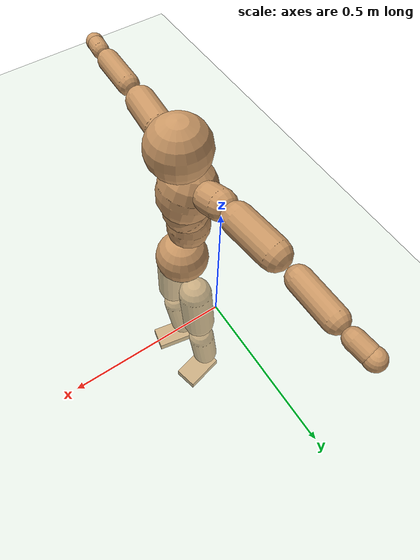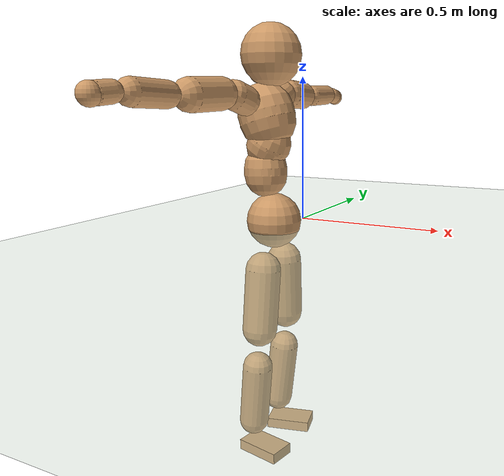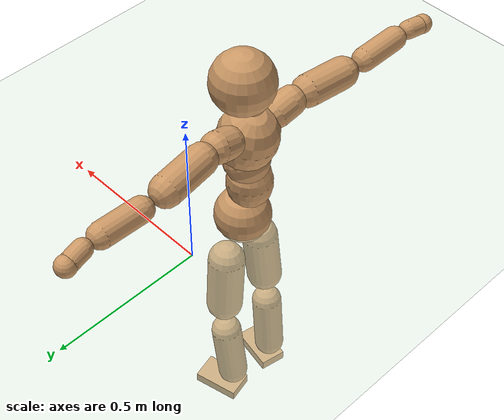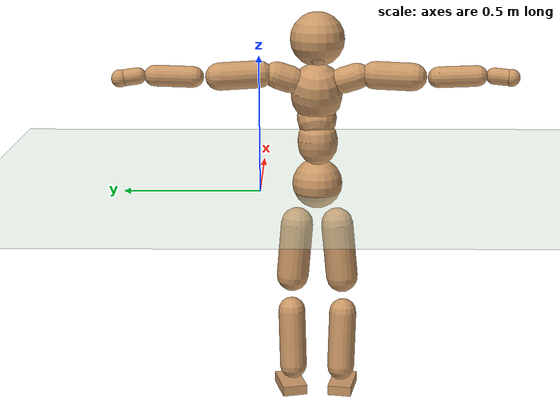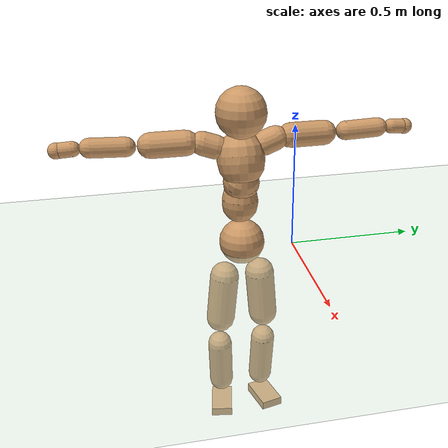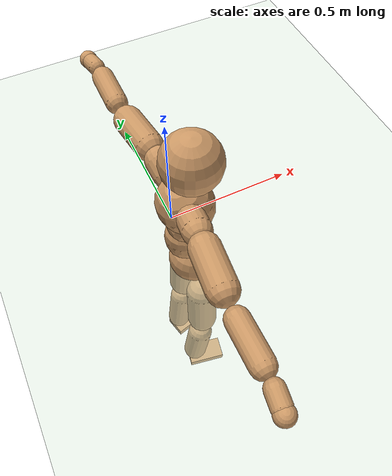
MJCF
<mujoco model="humanoid">
  <compiler coordinate="local"/>
  <default>
    <joint damping="0.0" armature="0.01" stiffness="0.0" limited="true"/>
    <geom conaffinity="1" condim="3" contype="7" margin="0.001" rgba="0.8 0.6 .4 1"/>
  </default>
  <asset>
    <texture type="skybox" builtin="gradient" rgb1=".4 .5 .6" rgb2="0 0 0" width="100" height="100"/>
    <texture builtin="flat" height="1278" mark="cross" markrgb="1 1 1" name="texgeom" random="0.01" rgb1="0.8 0.6 0.4" rgb2="0.8 0.6 0.4" type="cube" width="127"/>
    <texture builtin="checker" height="100" name="texplane" rgb1="0 0 0" rgb2="0.8 0.8 0.8" type="2d" width="100"/>
    <material name="MatPlane" reflectance="0.5" shininess="1" specular="1" texrepeat="60 60" texture="texplane"/>
    <material name="geom" texture="texgeom" texuniform="true"/>
  </asset>
  <worldbody>
    <light cutoff="100" diffuse="1 1 1" dir="-0 0 -1.3" directional="true" exponent="1" pos="0 0 1.3" specular=".1 .1 .1"/>
    <geom conaffinity="1" condim="3" name="floor" pos="0 0 0" rgba="0.8 0.9 0.8 1" size="100 100 .2" type="plane" material="MatPlane"/>
    <body name="Pelvis" pos="-0.0029 -0.2093 0.0315">
      <freejoint name="Pelvis"/>
      <geom type="sphere" contype="1" conaffinity="1" density="500" size="0.0912" pos="0.0000 0.0000 0.0000" name="Pelvis"/>
      <body name="L_Hip" pos="-0.0023 0.069 -0.0857">
        <joint name="L_Hip_x" type="hinge" pos="0 0 0" axis="1 0 0" stiffness="800" damping="80" armature="0.02" range="-180.0000 180.0000"/>
        <joint name="L_Hip_y" type="hinge" pos="0 0 0" axis="0 1 0" stiffness="800" damping="80" armature="0.02" range="-180.0000 180.0000"/>
        <joint name="L_Hip_z" type="hinge" pos="0 0 0" axis="0 0 1" stiffness="800" damping="80" armature="0.02" range="-180.0000 180.0000"/>
        <geom type="capsule" contype="1" conaffinity="1" density="500" fromto="-0.0015 0.0055 -0.0669 -0.0060 0.0218 -0.2674" size="0.0592" name="L_Hip"/>
        <body name="L_Knee" pos="-0.0075 0.0273 -0.3343">
          <joint name="L_Knee_x" type="hinge" pos="0 0 0" axis="1 0 0" stiffness="800" damping="80" armature="0.02" range="-180.0000 180.0000"/>
          <joint name="L_Knee_y" type="hinge" pos="0 0 0" axis="0 1 0" stiffness="800" damping="80" armature="0.02" range="-180.0000 180.0000"/>
          <joint name="L_Knee_z" type="hinge" pos="0 0 0" axis="0 0 1" stiffness="800" damping="80" armature="0.02" range="-180.0000 180.0000"/>
          <geom type="capsule" contype="1" conaffinity="1" density="500" fromto="-0.0079 -0.0020 -0.0700 -0.0317 -0.0078 -0.2800" size="0.0503" name="L_Knee"/>
          <body name="L_Ankle" pos="-0.0397 -0.0098 -0.3499">
            <joint name="L_Ankle_x" type="hinge" pos="0 0 0" axis="1 0 0" stiffness="800" damping="80" armature="0.02" range="-180.0000 180.0000"/>
            <joint name="L_Ankle_y" type="hinge" pos="0 0 0" axis="0 1 0" stiffness="800" damping="80" armature="0.02" range="-180.0000 180.0000"/>
            <joint name="L_Ankle_z" type="hinge" pos="0 0 0" axis="0 0 1" stiffness="800" damping="80" armature="0.02" range="-180.0000 180.0000"/>
            <geom type="box" contype="1" conaffinity="1" density="500" pos="0.0535 0.0129 -0.0256" size="0.0773 0.0458 0.0182" quat="0.9930 0.0000 0.0000 0.1181" name="L_Ankle"/>
            <body name="L_Toe" pos="0.1069 0.0258 -0.0512">
              <joint name="L_Toe_x" type="hinge" pos="0 0 0" axis="1 0 0" stiffness="500" damping="50" armature="0.02" range="-180.0000 180.0000"/>
              <joint name="L_Toe_y" type="hinge" pos="0 0 0" axis="0 1 0" stiffness="500" damping="50" armature="0.02" range="-180.0000 180.0000"/>
              <joint name="L_Toe_z" type="hinge" pos="0 0 0" axis="0 0 1" stiffness="500" damping="50" armature="0.02" range="-180.0000 180.0000"/>
              <geom type="box" contype="1" conaffinity="1" density="500" pos="0.0000 0.0000 0.0262" size="0.0009 0.0023 0.0009" quat="0.9922 0.0000 0.0000 0.1246" name="L_Toe"/>
            </body>
          </body>
        </body>
      </body>
      <body name="R_Hip" pos="0 -0.0673 -0.0857">
        <joint name="R_Hip_x" type="hinge" pos="0 0 0" axis="1 0 0" stiffness="800" damping="80" armature="0.02" range="-180.0000 180.0000"/>
        <joint name="R_Hip_y" type="hinge" pos="0 0 0" axis="0 1 0" stiffness="800" damping="80" armature="0.02" range="-180.0000 180.0000"/>
        <joint name="R_Hip_z" type="hinge" pos="0 0 0" axis="0 0 1" stiffness="800" damping="80" armature="0.02" range="-180.0000 180.0000"/>
        <geom type="capsule" contype="1" conaffinity="1" density="500" fromto="-0.0019 -0.0064 -0.0681 -0.0076 -0.0257 -0.2723" size="0.0586" name="R_Hip"/>
        <body name="R_Knee" pos="-0.0095 -0.0321 -0.3404">
          <joint name="R_Knee_x" type="hinge" pos="0 0 0" axis="1 0 0" stiffness="800" damping="80" armature="0.02" range="-180.0000 180.0000"/>
          <joint name="R_Knee_y" type="hinge" pos="0 0 0" axis="0 1 0" stiffness="800" damping="80" armature="0.02" range="-180.0000 180.0000"/>
          <joint name="R_Knee_z" type="hinge" pos="0 0 0" axis="0 0 1" stiffness="800" damping="80" armature="0.02" range="-180.0000 180.0000"/>
          <geom type="capsule" contype="1" conaffinity="1" density="500" fromto="-0.0077 0.0023 -0.0700 -0.0309 0.0091 -0.2801" size="0.0505" name="R_Knee"/>
          <body name="R_Ankle" pos="-0.0386 0.0114 -0.3502">
            <joint name="R_Ankle_x" type="hinge" pos="0 0 0" axis="1 0 0" stiffness="800" damping="80" armature="0.02" range="-180.0000 180.0000"/>
            <joint name="R_Ankle_y" type="hinge" pos="0 0 0" axis="0 1 0" stiffness="800" damping="80" armature="0.02" range="-180.0000 180.0000"/>
            <joint name="R_Ankle_z" type="hinge" pos="0 0 0" axis="0 0 1" stiffness="800" damping="80" armature="0.02" range="-180.0000 180.0000"/>
            <geom type="box" contype="1" conaffinity="1" density="500" pos="0.0550 -0.0104 -0.0214" size="0.0778 0.0441 0.0183" quat="0.9956 0.0000 0.0000 -0.0935" name="R_Ankle"/>
            <body name="R_Toe" pos="0.11 -0.0209 -0.0428">
              <joint name="R_Toe_x" type="hinge" pos="0 0 0" axis="1 0 0" stiffness="500" damping="50" armature="0.02" range="-180.0000 180.0000"/>
              <joint name="R_Toe_y" type="hinge" pos="0 0 0" axis="0 1 0" stiffness="500" damping="50" armature="0.02" range="-180.0000 180.0000"/>
              <joint name="R_Toe_z" type="hinge" pos="0 0 0" axis="0 0 1" stiffness="500" damping="50" armature="0.02" range="-180.0000 180.0000"/>
              <geom type="box" contype="1" conaffinity="1" density="500" pos="0.0000 0.0000 0.0235" size="0.0009 0.0022 0.001" quat="0.9965 0.0000 0.0000 -0.0833" name="R_Toe"/>
            </body>
          </body>
        </body>
      </body>
      <body name="Torso" pos="-0.0266 -0.0028 0.0999">
        <joint name="Torso_x" type="hinge" pos="0 0 0" axis="1 0 0" stiffness="1000" damping="100" armature="0.02" range="-180.0000 180.0000"/>
        <joint name="Torso_y" type="hinge" pos="0 0 0" axis="0 1 0" stiffness="1000" damping="100" armature="0.02" range="-180.0000 180.0000"/>
        <joint name="Torso_z" type="hinge" pos="0 0 0" axis="0 0 1" stiffness="1000" damping="100" armature="0.02" range="-180.0000 180.0000"/>
        <geom type="capsule" contype="1" conaffinity="1" density="500" fromto="-0.0027 0.0027 0.0746 -0.0018 0.0018 0.0498" size="0.0715" name="Torso"/>
        <body name="Spine" pos="-0.0045 0.0045 0.1244">
          <joint name="Spine_x" type="hinge" pos="0 0 0" axis="1 0 0" stiffness="1000" damping="100" armature="0.02" range="-180.0000 180.0000"/>
          <joint name="Spine_y" type="hinge" pos="0 0 0" axis="0 1 0" stiffness="1000" damping="100" armature="0.02" range="-180.0000 180.0000"/>
          <joint name="Spine_z" type="hinge" pos="0 0 0" axis="0 0 1" stiffness="1000" damping="100" armature="0.02" range="-180.0000 180.0000"/>
          <geom type="capsule" contype="1" conaffinity="1" density="500" fromto="0.0165 0.0013 0.0287 0.0110 0.0009 0.0191" size="0.0714" name="Spine"/>
          <body name="Chest" pos="0.0274 0.0022 0.0478">
            <joint name="Chest_x" type="hinge" pos="0 0 0" axis="1 0 0" stiffness="1000" damping="100" armature="0.02" range="-180.0000 180.0000"/>
            <joint name="Chest_y" type="hinge" pos="0 0 0" axis="0 1 0" stiffness="1000" damping="100" armature="0.02" range="-180.0000 180.0000"/>
            <joint name="Chest_z" type="hinge" pos="0 0 0" axis="0 0 1" stiffness="1000" damping="100" armature="0.02" range="-180.0000 180.0000"/>
            <geom type="capsule" contype="1" conaffinity="1" density="500" fromto="-0.0240 -0.0011 0.0838 -0.0160 -0.0007 0.0559" size="0.0926" name="Chest"/>
            <body name="Neck" pos="-0.046 -0.0036 0.1961">
              <joint name="Neck_x" type="hinge" pos="0 0 0" axis="1 0 0" stiffness="500" damping="50" armature="0.02" range="-180.0000 180.0000"/>
              <joint name="Neck_y" type="hinge" pos="0 0 0" axis="0 1 0" stiffness="500" damping="50" armature="0.02" range="-180.0000 180.0000"/>
              <joint name="Neck_z" type="hinge" pos="0 0 0" axis="0 0 1" stiffness="500" damping="50" armature="0.02" range="-180.0000 180.0000"/>
              <geom type="capsule" contype="1" conaffinity="1" density="500" fromto="0.0095 0.0002 0.0121 0.0380 0.0007 0.0485" size="0.0405" name="Neck"/>
              <body name="Head" pos="0.0475 0.0008 0.0606">
                <joint name="Head_x" type="hinge" pos="0 0 0" axis="1 0 0" stiffness="500" damping="50" armature="0.02" range="-180.0000 180.0000"/>
                <joint name="Head_y" type="hinge" pos="0 0 0" axis="0 1 0" stiffness="500" damping="50" armature="0.02" range="-180.0000 180.0000"/>
                <joint name="Head_z" type="hinge" pos="0 0 0" axis="0 0 1" stiffness="500" damping="50" armature="0.02" range="-180.0000 180.0000"/>
                <geom type="sphere" contype="1" conaffinity="1" density="500" size="0.0977" pos="0.0000 0.0000 0.0000" name="Head"/>
              </body>
            </body>
            <body name="L_Thorax" pos="-0.0349 0.0733 0.1122">
              <joint name="L_Thorax_x" type="hinge" pos="0 0 0" axis="1 0 0" stiffness="500" damping="50" armature="0.02" range="-180.0000 180.0000"/>
              <joint name="L_Thorax_y" type="hinge" pos="0 0 0" axis="0 1 0" stiffness="500" damping="50" armature="0.02" range="-180.0000 180.0000"/>
              <joint name="L_Thorax_z" type="hinge" pos="0 0 0" axis="0 0 1" stiffness="500" damping="50" armature="0.02" range="-180.0000 180.0000"/>
              <geom type="capsule" contype="1" conaffinity="1" density="500" fromto="-0.0018 0.0167 0.0058 -0.0073 0.0668 0.0230" size="0.0481" name="L_Thorax"/>
              <body name="L_Shoulder" pos="-0.0091 0.0835 0.0288">
                <joint name="L_Shoulder_x" type="hinge" pos="0 0 0" axis="1 0 0" stiffness="500" damping="50" armature="0.02" range="-720.0000 720.0000"/>
                <joint name="L_Shoulder_y" type="hinge" pos="0 0 0" axis="0 1 0" stiffness="500" damping="50" armature="0.02" range="-720.0000 720.0000"/>
                <joint name="L_Shoulder_z" type="hinge" pos="0 0 0" axis="0 0 1" stiffness="500" damping="50" armature="0.02" range="-720.0000 720.0000"/>
                <geom type="capsule" contype="1" conaffinity="1" density="500" fromto="-0.0057 0.0466 -0.0017 -0.0226 0.1863 -0.0070" size="0.0489" name="L_Shoulder"/>
                <body name="L_Elbow" pos="-0.0283 0.2329 -0.0087">
                  <joint name="L_Elbow_x" type="hinge" pos="0 0 0" axis="1 0 0" stiffness="500" damping="50" armature="0.02" range="-720.0000 720.0000"/>
                  <joint name="L_Elbow_y" type="hinge" pos="0 0 0" axis="0 1 0" stiffness="500" damping="50" armature="0.02" range="-720.0000 720.0000"/>
                  <joint name="L_Elbow_z" type="hinge" pos="0 0 0" axis="0 0 1" stiffness="500" damping="50" armature="0.02" range="-720.0000 720.0000"/>
                  <geom type="capsule" contype="1" conaffinity="1" density="500" fromto="0.0000 0.0446 0.0015 0.0001 0.1784 0.0059" size="0.0378" name="L_Elbow"/>
                  <body name="L_Wrist" pos="0.0001 0.2229 0.0074">
                    <joint name="L_Wrist_x" type="hinge" pos="0 0 0" axis="1 0 0" stiffness="300" damping="30" armature="0.02" range="-180.0000 180.0000"/>
                    <joint name="L_Wrist_y" type="hinge" pos="0 0 0" axis="0 1 0" stiffness="300" damping="30" armature="0.02" range="-180.0000 180.0000"/>
                    <joint name="L_Wrist_z" type="hinge" pos="0 0 0" axis="0 0 1" stiffness="300" damping="30" armature="0.02" range="-180.0000 180.0000"/>
                    <geom type="capsule" contype="1" conaffinity="1" density="500" fromto="-0.0025 0.0154 -0.0019 -0.0102 0.0617 -0.0075" size="0.0293" name="L_Wrist"/>
                    <body name="L_Hand" pos="-0.0127 0.0771 -0.0094">
                      <joint name="L_Hand_x" type="hinge" pos="0 0 0" axis="1 0 0" stiffness="300" damping="30" armature="0.02" range="-180.0000 180.0000"/>
                      <joint name="L_Hand_y" type="hinge" pos="0 0 0" axis="0 1 0" stiffness="300" damping="30" armature="0.02" range="-180.0000 180.0000"/>
                      <joint name="L_Hand_z" type="hinge" pos="0 0 0" axis="0 0 1" stiffness="300" damping="30" armature="0.02" range="-180.0000 180.0000"/>
                      <geom type="sphere" contype="1" conaffinity="1" density="500" size="0.0313" pos="0.0000 0.0000 0.0000" name="L_Hand"/>
                    </body>
                  </body>
                </body>
              </body>
            </body>
            <body name="R_Thorax" pos="-0.0389 -0.0751 0.1106">
              <joint name="R_Thorax_x" type="hinge" pos="0 0 0" axis="1 0 0" stiffness="500" damping="50" armature="0.02" range="-180.0000 180.0000"/>
              <joint name="R_Thorax_y" type="hinge" pos="0 0 0" axis="0 1 0" stiffness="500" damping="50" armature="0.02" range="-180.0000 180.0000"/>
              <joint name="R_Thorax_z" type="hinge" pos="0 0 0" axis="0 0 1" stiffness="500" damping="50" armature="0.02" range="-180.0000 180.0000"/>
              <geom type="capsule" contype="1" conaffinity="1" density="500" fromto="-0.0022 -0.0171 0.0055 -0.0087 -0.0685 0.0221" size="0.0468" name="R_Thorax"/>
              <body name="R_Shoulder" pos="-0.0109 -0.0856 0.0277">
                <joint name="R_Shoulder_x" type="hinge" pos="0 0 0" axis="1 0 0" stiffness="500" damping="50" armature="0.02" range="-720.0000 720.0000"/>
                <joint name="R_Shoulder_y" type="hinge" pos="0 0 0" axis="0 1 0" stiffness="500" damping="50" armature="0.02" range="-720.0000 720.0000"/>
                <joint name="R_Shoulder_z" type="hinge" pos="0 0 0" axis="0 0 1" stiffness="500" damping="50" armature="0.02" range="-720.0000 720.0000"/>
                <geom type="capsule" contype="1" conaffinity="1" density="500" fromto="-0.0041 -0.0446 -0.0014 -0.0163 -0.1784 -0.0057" size="0.0494" name="R_Shoulder"/>
                <body name="R_Elbow" pos="-0.0204 -0.2231 -0.0071">
                  <joint name="R_Elbow_x" type="hinge" pos="0 0 0" axis="1 0 0" stiffness="500" damping="50" armature="0.02" range="-720.0000 720.0000"/>
                  <joint name="R_Elbow_y" type="hinge" pos="0 0 0" axis="0 1 0" stiffness="500" damping="50" armature="0.02" range="-720.0000 720.0000"/>
                  <joint name="R_Elbow_z" type="hinge" pos="0 0 0" axis="0 0 1" stiffness="500" damping="50" armature="0.02" range="-720.0000 720.0000"/>
                  <geom type="capsule" contype="1" conaffinity="1" density="500" fromto="-0.0004 -0.0449 0.0017 -0.0016 -0.1796 0.0067" size="0.0375" name="R_Elbow"/>
                  <body name="R_Wrist" pos="-0.002 -0.2245 0.0083">
                    <joint name="R_Wrist_x" type="hinge" pos="0 0 0" axis="1 0 0" stiffness="300" damping="30" armature="0.02" range="-180.0000 180.0000"/>
                    <joint name="R_Wrist_y" type="hinge" pos="0 0 0" axis="0 1 0" stiffness="300" damping="30" armature="0.02" range="-180.0000 180.0000"/>
                    <joint name="R_Wrist_z" type="hinge" pos="0 0 0" axis="0 0 1" stiffness="300" damping="30" armature="0.02" range="-180.0000 180.0000"/>
                    <geom type="capsule" contype="1" conaffinity="1" density="500" fromto="-0.0019 -0.0150 -0.0013 -0.0077 -0.0601 -0.0054" size="0.0293" name="R_Wrist"/>
                    <body name="R_Hand" pos="-0.0096 -0.0752 -0.0067">
                      <joint name="R_Hand_x" type="hinge" pos="0 0 0" axis="1 0 0" stiffness="300" damping="30" armature="0.02" range="-180.0000 180.0000"/>
                      <joint name="R_Hand_y" type="hinge" pos="0 0 0" axis="0 1 0" stiffness="300" damping="30" armature="0.02" range="-180.0000 180.0000"/>
                      <joint name="R_Hand_z" type="hinge" pos="0 0 0" axis="0 0 1" stiffness="300" damping="30" armature="0.02" range="-180.0000 180.0000"/>
                      <geom type="sphere" contype="1" conaffinity="1" density="500" size="0.0305" pos="0.0000 0.0000 0.0000" name="R_Hand"/>
                    </body>
                  </body>
                </body>
              </body>
            </body>
          </body>
        </body>
      </body>
    </body>
  </worldbody>
  <actuator>
    <motor name="L_Hip_x" joint="L_Hip_x" gear="500"/>
    <motor name="L_Hip_y" joint="L_Hip_y" gear="500"/>
    <motor name="L_Hip_z" joint="L_Hip_z" gear="500"/>
    <motor name="L_Knee_x" joint="L_Knee_x" gear="500"/>
    <motor name="L_Knee_y" joint="L_Knee_y" gear="500"/>
    <motor name="L_Knee_z" joint="L_Knee_z" gear="500"/>
    <motor name="L_Ankle_x" joint="L_Ankle_x" gear="500"/>
    <motor name="L_Ankle_y" joint="L_Ankle_y" gear="500"/>
    <motor name="L_Ankle_z" joint="L_Ankle_z" gear="500"/>
    <motor name="L_Toe_x" joint="L_Toe_x" gear="500"/>
    <motor name="L_Toe_y" joint="L_Toe_y" gear="500"/>
    <motor name="L_Toe_z" joint="L_Toe_z" gear="500"/>
    <motor name="R_Hip_x" joint="R_Hip_x" gear="500"/>
    <motor name="R_Hip_y" joint="R_Hip_y" gear="500"/>
    <motor name="R_Hip_z" joint="R_Hip_z" gear="500"/>
    <motor name="R_Knee_x" joint="R_Knee_x" gear="500"/>
    <motor name="R_Knee_y" joint="R_Knee_y" gear="500"/>
    <motor name="R_Knee_z" joint="R_Knee_z" gear="500"/>
    <motor name="R_Ankle_x" joint="R_Ankle_x" gear="500"/>
    <motor name="R_Ankle_y" joint="R_Ankle_y" gear="500"/>
    <motor name="R_Ankle_z" joint="R_Ankle_z" gear="500"/>
    <motor name="R_Toe_x" joint="R_Toe_x" gear="500"/>
    <motor name="R_Toe_y" joint="R_Toe_y" gear="500"/>
    <motor name="R_Toe_z" joint="R_Toe_z" gear="500"/>
    <motor name="Torso_x" joint="Torso_x" gear="500"/>
    <motor name="Torso_y" joint="Torso_y" gear="500"/>
    <motor name="Torso_z" joint="Torso_z" gear="500"/>
    <motor name="Spine_x" joint="Spine_x" gear="500"/>
    <motor name="Spine_y" joint="Spine_y" gear="500"/>
    <motor name="Spine_z" joint="Spine_z" gear="500"/>
    <motor name="Chest_x" joint="Chest_x" gear="500"/>
    <motor name="Chest_y" joint="Chest_y" gear="500"/>
    <motor name="Chest_z" joint="Chest_z" gear="500"/>
    <motor name="Neck_x" joint="Neck_x" gear="500"/>
    <motor name="Neck_y" joint="Neck_y" gear="500"/>
    <motor name="Neck_z" joint="Neck_z" gear="500"/>
    <motor name="Head_x" joint="Head_x" gear="500"/>
    <motor name="Head_y" joint="Head_y" gear="500"/>
    <motor name="Head_z" joint="Head_z" gear="500"/>
    <motor name="L_Thorax_x" joint="L_Thorax_x" gear="500"/>
    <motor name="L_Thorax_y" joint="L_Thorax_y" gear="500"/>
    <motor name="L_Thorax_z" joint="L_Thorax_z" gear="500"/>
    <motor name="L_Shoulder_x" joint="L_Shoulder_x" gear="500"/>
    <motor name="L_Shoulder_y" joint="L_Shoulder_y" gear="500"/>
    <motor name="L_Shoulder_z" joint="L_Shoulder_z" gear="500"/>
    <motor name="L_Elbow_x" joint="L_Elbow_x" gear="500"/>
    <motor name="L_Elbow_y" joint="L_Elbow_y" gear="500"/>
    <motor name="L_Elbow_z" joint="L_Elbow_z" gear="500"/>
    <motor name="L_Wrist_x" joint="L_Wrist_x" gear="500"/>
    <motor name="L_Wrist_y" joint="L_Wrist_y" gear="500"/>
    <motor name="L_Wrist_z" joint="L_Wrist_z" gear="500"/>
    <motor name="L_Hand_x" joint="L_Hand_x" gear="500"/>
    <motor name="L_Hand_y" joint="L_Hand_y" gear="500"/>
    <motor name="L_Hand_z" joint="L_Hand_z" gear="500"/>
    <motor name="R_Thorax_x" joint="R_Thorax_x" gear="500"/>
    <motor name="R_Thorax_y" joint="R_Thorax_y" gear="500"/>
    <motor name="R_Thorax_z" joint="R_Thorax_z" gear="500"/>
    <motor name="R_Shoulder_x" joint="R_Shoulder_x" gear="500"/>
    <motor name="R_Shoulder_y" joint="R_Shoulder_y" gear="500"/>
    <motor name="R_Shoulder_z" joint="R_Shoulder_z" gear="500"/>
    <motor name="R_Elbow_x" joint="R_Elbow_x" gear="500"/>
    <motor name="R_Elbow_y" joint="R_Elbow_y" gear="500"/>
    <motor name="R_Elbow_z" joint="R_Elbow_z" gear="500"/>
    <motor name="R_Wrist_x" joint="R_Wrist_x" gear="500"/>
    <motor name="R_Wrist_y" joint="R_Wrist_y" gear="500"/>
    <motor name="R_Wrist_z" joint="R_Wrist_z" gear="500"/>
    <motor name="R_Hand_x" joint="R_Hand_x" gear="500"/>
    <motor name="R_Hand_y" joint="R_Hand_y" gear="500"/>
    <motor name="R_Hand_z" joint="R_Hand_z" gear="500"/>
  </actuator>
  <contact>
    <exclude body1="Torso" body2="Chest"/>
    <exclude body1="Head" body2="Chest"/>
    <exclude body1="R_Knee" body2="R_Toe"/>
    <exclude body1="R_Knee" body2="L_Ankle"/>
    <exclude body1="R_Knee" body2="L_Toe"/>
    <exclude body1="L_Knee" body2="L_Toe"/>
    <exclude body1="L_Knee" body2="R_Ankle"/>
    <exclude body1="L_Knee" body2="R_Toe"/>
    <exclude body1="L_Shoulder" body2="Chest"/>
    <exclude body1="R_Shoulder" body2="Chest"/>
  </contact>
  <sensor/>
  <size njmax="700" nconmax="700"/>
</mujoco>
